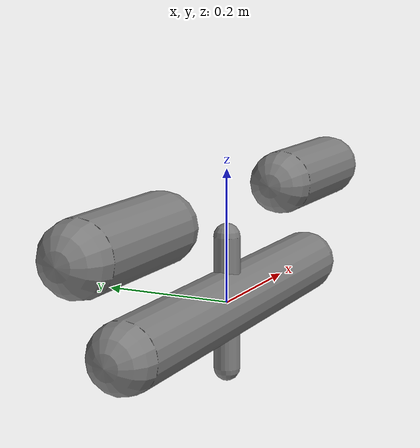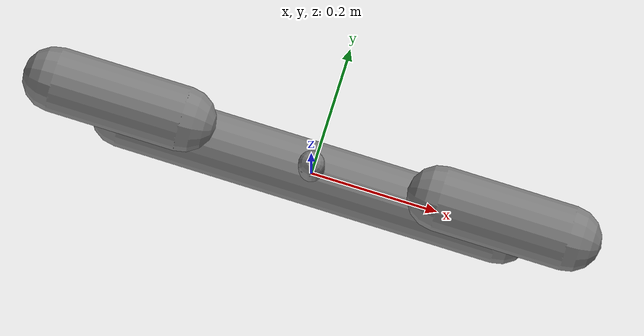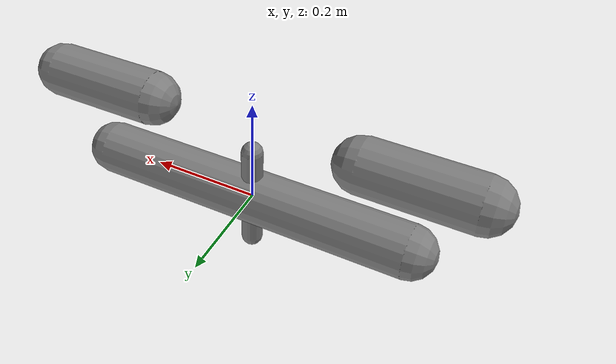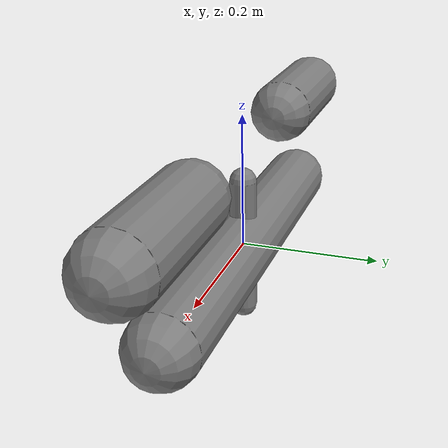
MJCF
<mujoco model="inverted pendulum">
    <compiler inertiafromgeom="true" />
    <default>
        <joint armature="0" damping="1" limited="true" />
        <geom contype="0" friction="1 0.1 0.1" conaffinity="1"/>
        <tendon />
        <motor ctrlrange="-1 1" />
    </default>
    <option gravity="0.0 0.0 -9.81" timestep="0.02" />
    <custom>
        <!-- brax custom params -->
        <numeric data="10000" name="constraint_stiffness" />
        <numeric data="10000" name="constraint_limit_stiffness" />
        <numeric data="0" name="spring_mass_scale" />
        <numeric data="1" name="spring_inertia_scale" />
        <numeric data="5" name="solver_maxls" />
    </custom>
    <size nstack="3000" />
    <worldbody>
        <geom name="rail_z" pos="0 0 0" quat="1.0 0 0.0 0" size="0.02 0.1" mass="0.0001" type="capsule" />
        <body name="rail_x_with_cart" pos=" 0 0 0">
            <joint axis="0 0 1" limited="false" name="slider_z" pos="0 0 0" type="slide" />
            <geom name="rail_x" pos="0 0 0" quat="0.707 0 0.707 0" size="0.02 0.1" mass="0.0001" type="capsule" />
            <body name="cart" pos="0 0 0">
                <joint axis="1 0 0" limited="false" name="slider_x" pos="0 0 0" type="slide" />
                <geom name="cart" pos="0 0 0" quat="0.707 0 0.707 0" size="0.01 0.01" mass="0.0001"  type="capsule" />
                <body name="pole" pos="0 0 0">
                    <joint axis="0 1 0" name="hinge" pos="0 0 0" range="-180 180" type="hinge" />
                    <geom fromto="-0.3 0 0.0 0.3 0 0.0" name="cpole" size="0.05" type="capsule" />
                    <geom type='capsule' size='0.05 0.1' pos='-0.3 0.0 0.15' quat="0.707 0 0.707 0" density="0.1" name="left_rotor"/>
                    <geom type='capsule' size='0.05 0.1' pos='0.3 0.0 0.15' quat="0.707 0 0.707 0" density="0.1" name="right_rotor"/>
                </body>
            </body>
        </body>
    </worldbody>
    <actuator>
        <!-- acc_max = 20 -->
        <!-- alpha_max = 500 -->
        <motor ctrllimited="true" ctrlrange="-1 1" gear="100.0" joint="slider_x" name="act_x" />
        <motor ctrllimited="true" ctrlrange="-1 1" gear="100.0" joint="slider_z" name="act_z" />
        <motor ctrllimited="true" ctrlrange="-1 1" gear="10.0" joint="hinge" name="act_hinge" />
    </actuator>
</mujoco>
